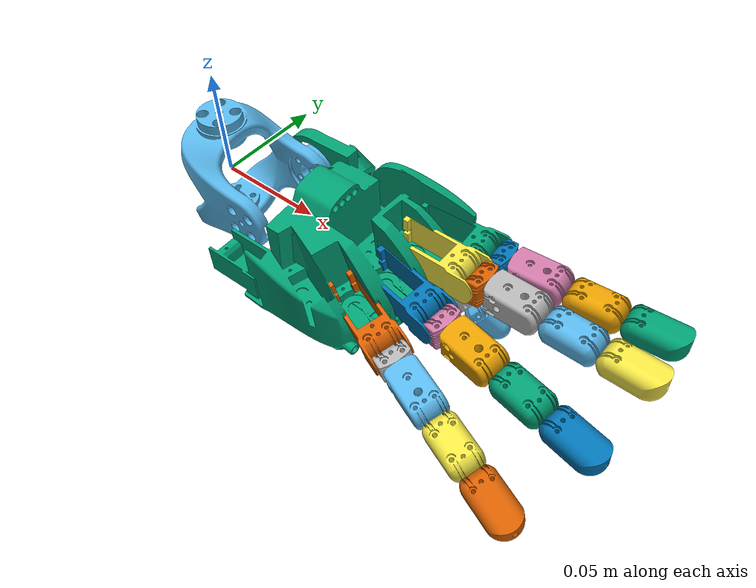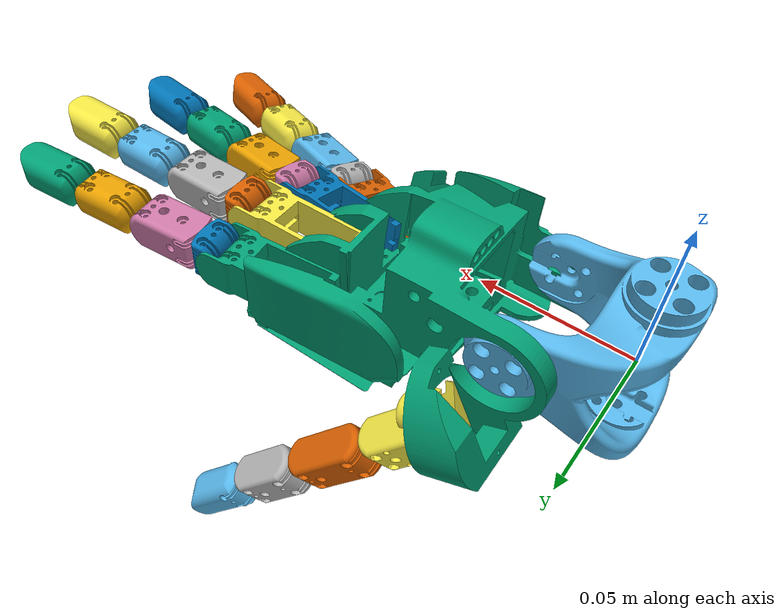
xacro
<?xml version="1.0"?>
<robot name="hopejr_hand" xmlns:xacro="http://www.ros.org/wiki/xacro">

    <xacro:include filename="$(find hopejr_hand_description)/urdf/hopejr_hand.urdf.xacro" />

    <link name="base_footprint"/>
    <xacro:property name="prefix" value=""/>
    <xacro:hopejr_hand_macro
        prefix="${prefix}"
        parent_link="base_footprint"
        scale="0.1"
    />

    <joint name="${prefix}base_link_fixed" type="fixed">
        <parent link="base_footprint"/>
        <child link="${prefix}base_link"/>
        <origin xyz="0 0 0" rpy="0 0 0"/>
    </joint>

</robot>

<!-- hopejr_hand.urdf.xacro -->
<robot name="hopejr_hand" xmlns:xacro="http://www.ros.org/wiki/xacro">

    <xacro:macro name="hopejr_hand_macro" params="prefix parent_link scale">

        <xacro:include filename="$(find hopejr_hand_description)/urdf/macros.xacro" />

        <link name="${prefix}base_link">
            <visual>
                <origin xyz="0 0 0" rpy="${pi/180*0} 0 0"/>
                <geometry>
                    <mesh filename="package://hopejr_hand_description/meshes/visual/base_link.dae" scale="${scale} ${scale} ${scale}"/>
                </geometry>
            </visual>
            <collision>
                <origin xyz="0 0 0" rpy="0 0 0"/>
                <geometry>
                    <mesh filename="package://hopejr_hand_description/meshes/collision/base_link.stl" scale="${scale} ${scale} ${scale}"/>
                </geometry>
            </collision>
            <inertial>
                <origin xyz="-0.02 0 0.028" rpy="0 0 0"/>
                <mass value="0.03323"/>
                <inertia ixx="0.000018824494" ixy="-0.000000571474" ixz="-0.000000041098" iyy="0.00001505929" iyz="0.000000023636" izz="0.000013661405"/>
            </inertial>
        </link>

        <link name="${prefix}hand">
            <visual>
                <origin xyz="0 0 0" rpy="0 0 0"/>
                <geometry>
                    <mesh filename="package://hopejr_hand_description/meshes/visual/hand.dae" scale="${scale} ${scale} ${scale}"/>
                </geometry>
            </visual>
            <collision>
                <origin xyz="0 0 0" rpy="0 0 0"/>
                <geometry>
                    <mesh filename="package://hopejr_hand_description/meshes/collision/hand.stl" scale="${scale} ${scale} ${scale}"/>
                </geometry>
            </collision>
            <inertial>
                <origin xyz="0 0 0" rpy="0 0 0"/>
                <mass value="0.252893"/>
                <inertia ixx="0.0002839" ixy="0.000003336317" ixz="0.000004077546" iyy="0.0001891" iyz="0.000000331897" izz="0.0001469"/>
            </inertial>
        </link>

        <joint name="${prefix}wrist_pitch" type="revolute">
            <parent link="${prefix}base_link"/>
            <child link="${prefix}hand"/>
            <origin xyz="${0.29887*scale} ${0.07923*scale} 0" rpy="0 ${pi/2} 0"/>
            <axis xyz="0 1 0"/>
            <limit effort="10" velocity="1.0" lower="${-pi/180*75}" upper="${pi/180*80}" />
        </joint>

        <link name="${prefix}thumb_mcp_2">
            <visual>
                <origin xyz="0 0 0" rpy="0 0 0"/>
                <geometry>
                    <mesh filename="package://hopejr_hand_description/meshes/visual/thumb_mcp_2.dae" scale="${scale} ${scale} ${scale}"/>
                </geometry>
            </visual>
            <collision>
                <origin xyz="0 0 0" rpy="0 0 0"/>
                <geometry>
                    <mesh filename="package://hopejr_hand_description/meshes/collision/thumb_mcp_2.stl" scale="${scale} ${scale} ${scale}"/>
                </geometry>
            </collision>
            <inertial>
                <origin xyz="0 0 0" rpy="0 0 0"/>
                <mass value="0.008776"/>
                <inertia ixx="0.000000783215" ixy="0.000000007992" ixz="0.000000266897" iyy="0.000000932685" iyz="-0.000000055174" izz="0.000000534905"/>
            </inertial>
        </link>

        <joint name="${prefix}thumb_mcp_2" type="revolute">
            <parent link="${prefix}hand"/>
            <child link="${prefix}thumb_mcp_2"/>
            <origin xyz="${0.19772*scale} ${0.28618*scale} ${0.058046*scale}" rpy="${pi/180*156} ${pi/180*11} ${-pi/180*67}"/>
            <axis xyz="0 0 1"/>
            <limit effort="10" velocity="1.0" lower="-3" upper="-0.043" />
        </joint>

        <link name="${prefix}thumb_pip_1_support">
            <inertial>
                <origin xyz="0 0 0" rpy="0 0 0"/>
                <mass value="0.0000000000001"/>
                <inertia ixx="0.00000000000001" ixy="0" ixz="0" iyy="0.00000000000001" iyz="0" izz="0.00000000000001"/>
            </inertial>
        </link>

        <joint name="${prefix}thumb_pip_1_support" type="revolute">
            <parent link="${prefix}thumb_mcp_2"/>
            <child link="${prefix}thumb_pip_1_support"/>
            <origin xyz="${0.1180315*scale} ${-0.0121475*scale} ${-0.229186*scale}" rpy="${-pi/180*157.5} ${pi/180*64.13} ${-pi/180*20.774}"/>
            <axis xyz="0 -1 0"/>
            <limit effort="10" velocity="1.0" lower="0" upper="${pi/180*67.5}" />
            <mimic joint="${prefix}thumb_pip_1"/> </joint>

        <link name="${prefix}thumb_pip_1">
            <visual>
                <origin xyz="0 0 0" rpy="0 0 0"/>
                <geometry>
                    <mesh filename="package://hopejr_hand_description/meshes/visual/thumb_pip_1.dae" scale="${scale} ${scale} ${scale}"/>
                </geometry>
            </visual>
            <collision>
                <origin xyz="0 0 0" rpy="0 0 0"/>
                <geometry>
                    <mesh filename="package://hopejr_hand_description/meshes/collision/thumb_pip_1.stl" scale="${scale} ${scale} ${scale}"/>
                </geometry>
            </collision>
            <inertial>
                <origin xyz="0 0 0" rpy="0 0 0"/>
                <mass value="0.007142"/>
                <inertia ixx="0.000000233324" ixy="-0.000000000007" ixz="0.00000000023" iyy="0.000000597862" iyz="0.000000000054" izz="0.000000638412"/>
            </inertial>
        </link>

        <joint name="${prefix}thumb_pip_1" type="revolute">
            <parent link="${prefix}thumb_pip_1_support"/>
            <child link="${prefix}thumb_pip_1"/>
            <origin xyz="${0.152*scale} 0 0" rpy="0 0 0"/>
            <axis xyz="0 -1 0"/>
            <limit effort="10" velocity="1.0" lower="0" upper="${pi/180*67.5}" />
        </joint>

        <link name="${prefix}thumb_pip_2_support">
            <inertial>
                <origin xyz="0 0 0" rpy="0 0 0"/>
                <mass value="0.0000000000001"/>
                <inertia ixx="0.00000000000001" ixy="0" ixz="0" iyy="0.00000000000001" iyz="0" izz="0.00000000000001"/>
            </inertial>
        </link>

        <joint name="${prefix}thumb_pip_2_support" type="revolute">
            <parent link="${prefix}thumb_pip_1"/>
            <child link="${prefix}thumb_pip_2_support"/>
            <origin xyz="${0.168*scale} 0 0" rpy="0 0 0"/>
            <axis xyz="0 -1 0"/>
            <limit effort="10" velocity="1.0" lower="0" upper="${pi/180*67.5}" />
            <mimic joint="${prefix}thumb_pip_2"/> </joint>

        <link name="${prefix}thumb_pip_2">
            <visual>
                <origin xyz="0 0 0" rpy="0 0 0"/>
                <geometry>
                    <mesh filename="package://hopejr_hand_description/meshes/visual/thumb_pip_2.dae" scale="${scale} ${scale} ${scale}"/>
                </geometry>
            </visual>
            <collision>
                <origin xyz="0 0 0" rpy="0 0 0"/>
                <geometry>
                    <mesh filename="package://hopejr_hand_description/meshes/collision/thumb_pip_2.stl" scale="${scale} ${scale} ${scale}"/>
                </geometry>
            </collision>
            <inertial>
                <origin xyz="0 0 0" rpy="0 0 0"/>
                <mass value="0.006089"/>
                <inertia ixx="0.000000197597" ixy="-0.000000000005" ixz="0.00000000043" iyy="0.000000404632" iyz="0.000000000054" izz="0.000000440963"/>
            </inertial>
        </link>

        <joint name="${prefix}thumb_pip_2" type="revolute">
            <parent link="${prefix}thumb_pip_2_support"/>
            <child link="${prefix}thumb_pip_2"/>
            <origin xyz="${0.152*scale} 0 0" rpy="0 0 0"/>
            <axis xyz="0 -1 0"/>
            <limit effort="10" velocity="1.0" lower="0" upper="${pi/180*67.5}" />
        </joint>

        <link name="${prefix}thumb_dip_support">
            <inertial>
                <origin xyz="0 0 0" rpy="0 0 0"/>
                <mass value="0.0000000000001"/>
                <inertia ixx="0.00000000000001" ixy="0" ixz="0" iyy="0.00000000000001" iyz="0" izz="0.00000000000001"/>
            </inertial>
        </link>

        <joint name="${prefix}thumb_dip_support" type="revolute">
            <parent link="${prefix}thumb_pip_2"/>
            <child link="${prefix}thumb_dip_support"/>
            <origin xyz="${0.128*scale} 0 0" rpy="0 0 0"/>
            <axis xyz="0 -1 0"/>
            <limit effort="10" velocity="1.0" lower="0" upper="${pi/180*67.5}" />
            <mimic joint="${prefix}thumb_dip"/> </joint>

        <link name="${prefix}thumb_dip">
            <visual>
                <origin xyz="0 0 0" rpy="0 0 0"/>
                <geometry>
                    <mesh filename="package://hopejr_hand_description/meshes/visual/thumb_dip.dae" scale="${scale} ${scale} ${scale}"/>
                </geometry>
            </visual>
            <collision>
                <origin xyz="0 0 0" rpy="0 0 0"/>
                <geometry>
                    <mesh filename="package://hopejr_hand_description/meshes/collision/thumb_dip.stl" scale="${scale} ${scale} ${scale}"/>
                </geometry>
            </collision>
            <inertial>
                <origin xyz="0 0 0" rpy="0 0 0"/>
                <mass value="0.005429"/>
                <inertia ixx="0.000000155671" ixy="0.000000000024" ixz="0.000000002166" iyy="0.00000033961" iyz="0.000000000002" izz="0.000000357923"/>
            </inertial>
        </link>

        <joint name="${prefix}thumb_dip" type="revolute">
            <parent link="${prefix}thumb_dip_support"/>
            <child link="${prefix}thumb_dip"/>
            <origin xyz="${0.152*scale} 0 0" rpy="0 0 0"/>
            <axis xyz="0 -1 0"/>
            <limit effort="10" velocity="1.0" lower="0" upper="${pi/180*67.5}" />
        </joint>

        <xacro:create_finger
            name="${prefix}index"
            mcp1_xyz="${0.071613*scale} ${0.25677*scale} ${0.85375*scale}"
            mcp1_rpy="${-pi/180*88.779} ${-pi/180*84.983} ${pi/180*89.385}"
            hand_link="${prefix}hand"
            scale="${scale}"/>

        <xacro:create_finger
            name="${prefix}middle"
            mcp1_xyz="${0.024581*scale} ${0.077754*scale} ${0.87322*scale}"
            mcp1_rpy="${-pi/180*79.515} ${-pi/180*89.706} ${pi/180*80.164}"
            hand_link="${prefix}hand"
            scale="${scale}"/>

        <xacro:create_finger
            name="${prefix}ring"
            mcp1_xyz="${0.085778*scale} ${-0.13244*scale} ${0.8552*scale}"
            mcp1_rpy="${-pi/180*93.801} ${-pi/180*99.155} ${pi/180*101.17}"
            hand_link="${prefix}hand"
            scale="${scale}"/>

        <xacro:create_finger
            name="${prefix}pinky"
            mcp1_xyz="${0.16965*scale} ${-0.31494*scale} ${0.77426*scale}"
            mcp1_rpy="${-pi/180*88.255} ${-pi/180*110.35} ${pi/180*100.84}"
            hand_link="${prefix}hand"
            scale="${scale}"/>

    </xacro:macro>

</robot>

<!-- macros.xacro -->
<robot xmlns:xacro="http://www.ros.org/wiki/xacro">

    <xacro:macro name="create_finger" params="name mcp1_xyz mcp1_rpy hand_link scale">

        <link name="${name}_mcp_1">
            <visual>
                <origin xyz="0 0 0" rpy="0 0 0"/>
                <geometry>
                    <mesh filename="package://hopejr_hand_description/meshes/visual/mcp_1.dae" scale="${scale} ${scale} ${scale}"/>
                </geometry>
            </visual>
            <collision>
                <origin xyz="0 0 0" rpy="0 0 0"/>
                <geometry>
                    <mesh filename="package://hopejr_hand_description/meshes/collision/mcp_1.stl" scale="${scale} ${scale} ${scale}"/>
                </geometry>
            </collision>
            <inertial>
                <origin xyz="0 0 0" rpy="0 0 0"/>
                <mass value="0.004836"/>
                <inertia ixx="0.000000235908" ixy="-0.000000006556" ixz="0.000000001806" iyy="0.000000740439" iyz="0.000000000035" izz="0.000000830731"/>
            </inertial>
        </link>

        <joint name="${name}_mcp_1" type="fixed">
            <parent link="${hand_link}"/>
            <child link="${name}_mcp_1"/>
            <origin xyz="${mcp1_xyz}" rpy="${mcp1_rpy}"/>
            <axis xyz="0 1 0"/>
        </joint>

        <link name="${name}_mcp_2_support">
            <inertial>
                <origin xyz="0 0 0" rpy="0 0 0"/>
                <mass value="0.0000000000001"/>
                <inertia ixx="0.00000000000001" ixy="0" ixz="0" iyy="0.00000000000001" iyz="0" izz="0.00000000000001"/>
            </inertial>
        </link>

        <joint name="${name}_mcp_2_support" type="revolute">
            <parent link="${name}_mcp_1"/>
            <child link="${name}_mcp_2_support"/>
            <origin xyz="0 0 0" rpy="0 0 0"/>
            <axis xyz="0 1 0"/>
            <limit effort="10" velocity="1.0" lower="0" upper="${pi/180*67.5}" />
            <mimic joint="${name}_mcp_2"/>
        </joint>

        <link name="${name}_mcp_2">
            <visual>
                <origin xyz="0 0 0" rpy="0 0 0"/>
                <geometry>
                    <mesh filename="package://hopejr_hand_description/meshes/visual/mcp_2.dae" scale="${scale} ${scale} ${scale}"/>
                </geometry>
            </visual>
            <collision>
                <origin xyz="0 0 0" rpy="0 0 0"/>
                <geometry>
                    <mesh filename="package://hopejr_hand_description/meshes/collision/mcp_2.stl" scale="${scale} ${scale} ${scale}"/>
                </geometry>
            </collision>
            <inertial>
                <origin xyz="0 0 0" rpy="0 0 0"/>
                <mass value="0.001654"/>
                <inertia ixx="0.000000049479" ixy="0.000000000263" ixz="0.000000000299" iyy="0.000000032432" iyz="0.000000000057" izz="0.000000038462"/>
            </inertial>
        </link>

        <joint name="${name}_mcp_2" type="revolute">
            <parent link="${name}_mcp_2_support"/>
            <child link="${name}_mcp_2"/>
            <origin xyz="${0.152*scale} 0 0" rpy="0 0 0"/>
            <axis xyz="0 1 0"/>
            <limit effort="10" velocity="1.0" lower="0" upper="${pi/180*67.5}" />
        </joint>

        <link name="${name}_pip_support">
            <inertial>
                <origin xyz="0 0 0" rpy="0 0 0"/>
                <mass value="0.0000000000001"/>
                <inertia ixx="0.00000000000001" ixy="0" ixz="0" iyy="0.00000000000001" iyz="0" izz="0.00000000000001"/>
            </inertial>
        </link>

        <joint name="${name}_pip_support" type="revolute">
            <parent link="${name}_mcp_2"/>
            <child link="${name}_pip_support"/>
            <origin xyz="${-0.195135*scale} 0 0" rpy="0 0 0"/>
            <axis xyz="0 0 1"/>
            <limit effort="10" velocity="1.0" lower="${-pi/180*23.8}" upper="${pi/180*23.8}" />
            <mimic joint="${name}_pip"/>
        </joint>

        <link name="${name}_pip">
            <visual>
                <origin xyz="0 0 0" rpy="0 0 0"/>
                <geometry>
                    <mesh filename="package://hopejr_hand_description/meshes/visual/pip.dae" scale="${scale} ${scale} ${scale}"/>
                </geometry>
            </visual>
            <collision>
                <origin xyz="0 0 0" rpy="0 0 0"/>
                <geometry>
                    <mesh filename="package://hopejr_hand_description/meshes/collision/pip.stl" scale="${scale} ${scale} ${scale}"/>
                </geometry>
            </collision>
            <inertial>
                <origin xyz="0 0 0" rpy="0 0 0"/>
                <mass value="0.005708"/>
                <inertia ixx="0.00000018835" ixy="0.00000001165" ixz="0.000000000165" iyy="0.000000372084" iyz="-0.000000000039" izz="0.00000039757"/>
            </inertial>
        </link>

        <joint name="${name}_pip" type="revolute">
            <parent link="${name}_pip_support"/>
            <child link="${name}_pip"/>
            <origin xyz="${0.435*scale} 0 0" rpy="0 0 0"/>
            <axis xyz="0 0 1"/>
            <limit effort="10" velocity="1.0" lower="${-pi/180*23.8}" upper="${pi/180*23.8}" />
        </joint>

        <link name="${name}_dip_1_support">
            <inertial>
                <origin xyz="0 0 0" rpy="0 0 0"/>
                <mass value="0.0000000000001"/>
                <inertia ixx="0.00000000000001" ixy="0" ixz="0" iyy="0.00000000000001" iyz="0" izz="0.00000000000001"/>
            </inertial>
        </link>

        <joint name="${name}_dip_1_support" type="revolute">
            <parent link="${name}_pip"/>
            <child link="${name}_dip_1_support"/>
            <origin xyz="${-0.029132*scale} 0 0" rpy="0 0 0"/>
            <axis xyz="0 1 0"/>
            <limit effort="10" velocity="1.0" lower="0" upper="${pi/180*67.5}" />
            <mimic joint="${name}_dip_1"/>
        </joint>

        <link name="${name}_dip_1">
            <visual>
                <origin xyz="0 0 0" rpy="0 0 0"/>
                <geometry>
                    <mesh filename="package://hopejr_hand_description/meshes/visual/dip_1.dae" scale="${scale} ${scale} ${scale}"/>
                </geometry>
            </visual>
            <collision>
                <origin xyz="0 0 0" rpy="0 0 0"/>
                <geometry>
                    <mesh filename="package://hopejr_hand_description/meshes/collision/dip_1.stl" scale="${scale} ${scale} ${scale}"/>
                </geometry>
            </collision>
            <inertial>
                <origin xyz="0 0 0" rpy="0 0 0"/>
                <mass value="0.005093"/>
                <inertia ixx="0.000000143621" ixy="-0.00000000003" ixz="0.000000000091" iyy="0.000000290288" iyz="-0.000000000079" izz="0.000000314107"/>
            </inertial>
        </link>

        <joint name="${name}_dip_1" type="revolute">
            <parent link="${name}_dip_1_support"/>
            <child link="${name}_dip_1"/>
            <origin xyz="${0.152*scale} 0 0" rpy="0 0 0"/>
            <axis xyz="0 1 0"/>
            <limit effort="10" velocity="1.0" lower="0" upper="${pi/180*67.5}" />
        </joint>

        <link name="${name}_dip_2_support">
            <inertial>
                <origin xyz="0 0 0" rpy="0 0 0"/>
                <mass value="0.0000000000001"/>
                <inertia ixx="0.00000000000001" ixy="0" ixz="0" iyy="0.00000000000001" iyz="0" izz="0.00000000000001"/>
            </inertial>
        </link>

        <joint name="${name}_dip_2_support" type="revolute">
            <parent link="${name}_dip_1"/>
            <child link="${name}_dip_2_support"/>
            <origin xyz="${0.106*scale} 0 0" rpy="0 0 0"/>
            <axis xyz="0 1 0"/>
            <limit effort="10" velocity="1.0" lower="0" upper="${pi/180*67.5}" />
            <mimic joint="${name}_dip_2"/>
        </joint>

        <link name="${name}_dip_2">
            <visual>
                <origin xyz="0 0 0" rpy="0 0 0"/>
                <geometry>
                    <mesh filename="package://hopejr_hand_description/meshes/visual/dip_2.dae" scale="${scale} ${scale} ${scale}"/>
                </geometry>
            </visual>
            <collision>
                <origin xyz="0 0 0" rpy="0 0 0"/>
                <geometry>
                    <mesh filename="package://hopejr_hand_description/meshes/collision/dip_2.stl" scale="${scale} ${scale} ${scale}"/>
                </geometry>
            </collision>
            <inertial>
                <origin xyz="0 0 0" rpy="0 0 0"/>
                <mass value="0.005429"/>
                <inertia ixx="0.000000155634" ixy="0.000000000003" ixz="-0.000000002159" iyy="0.000000339577" iyz="-0.000000000002" izz="0.000000357884"/>
            </inertial>
        </link>

        <joint name="${name}_dip_2" type="revolute">
            <parent link="${name}_dip_2_support"/>
            <child link="${name}_dip_2"/>
            <origin xyz="${0.152*scale} 0 0" rpy="0 0 0"/>
            <axis xyz="0 1 0"/>
            <limit effort="10" velocity="1.0" lower="0" upper="${pi/180*67.5}" />
            <mimic joint="${name}_dip_1" multiplier="0.8" offset="0"/>
        </joint>

    </xacro:macro>
</robot>
